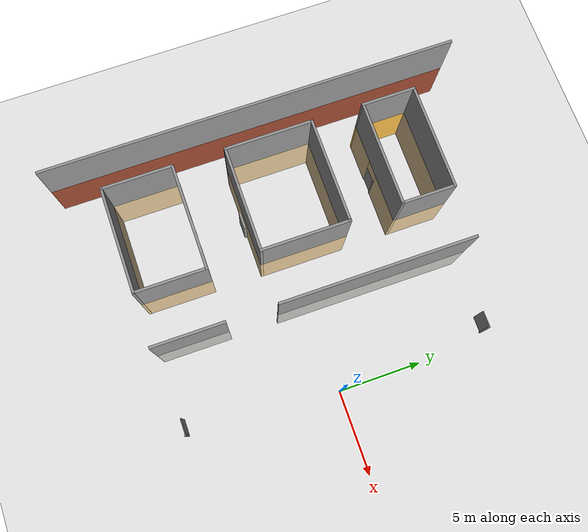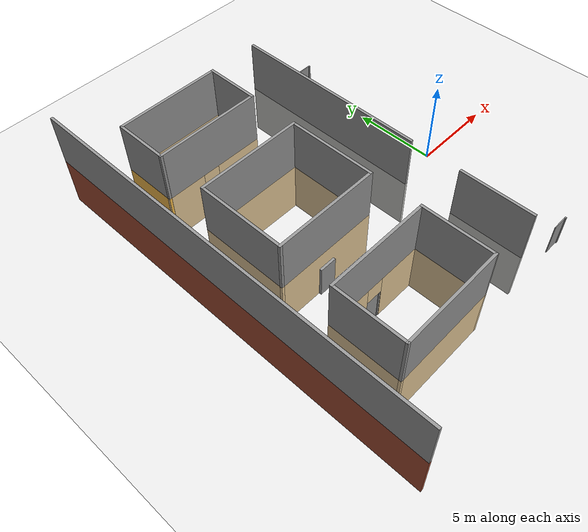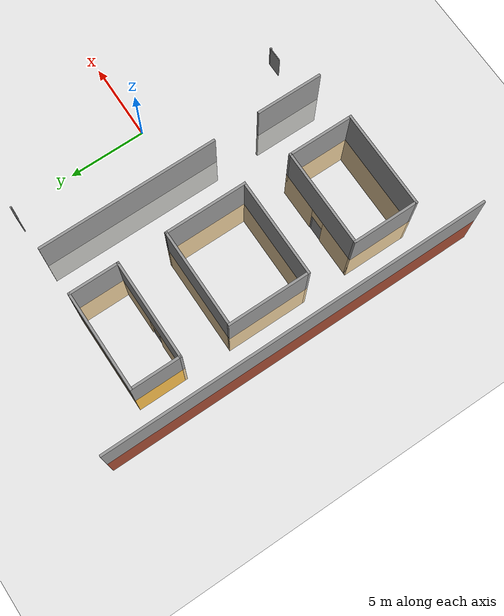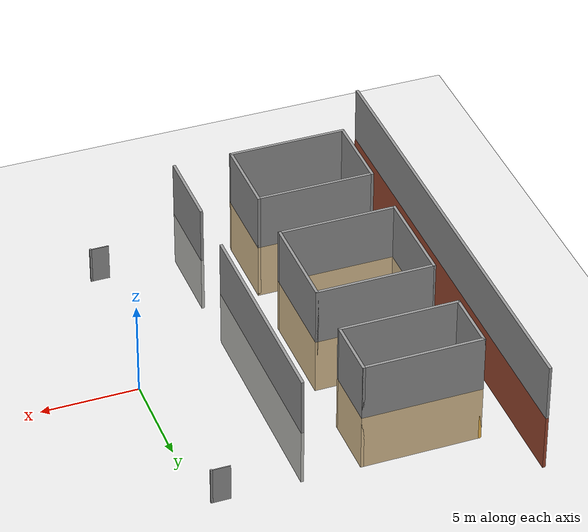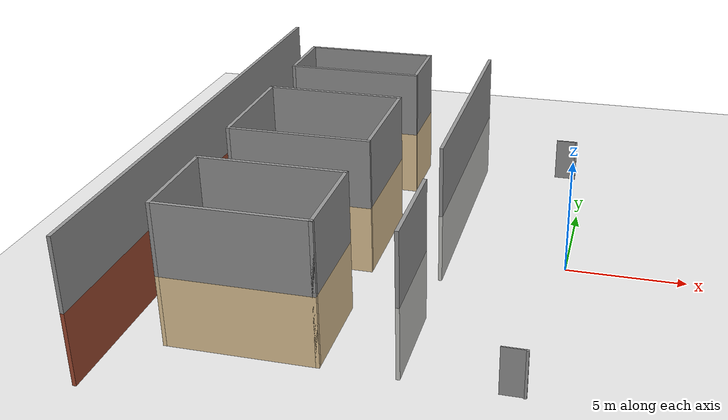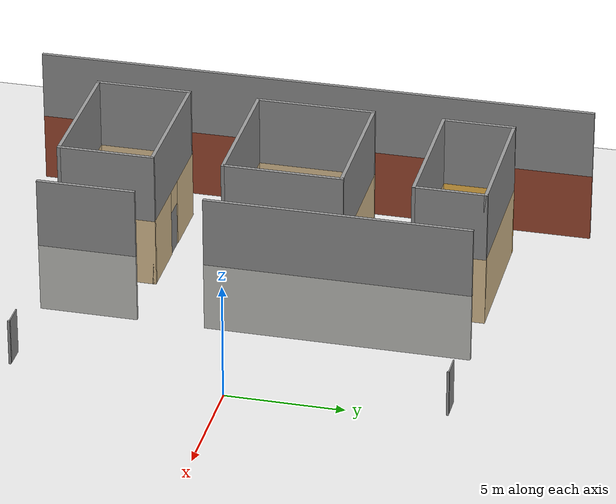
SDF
<sdf version="1.6">
 <world name="default">
  <model name="ground_plane">
   <static>1</static>
   <link name="link">
    <collision name="collision">
     <geometry><plane><normal>0 0 1</normal><size>100 100</size></plane></geometry>
     <surface><friction><ode><mu>100</mu><mu2>50</mu2></ode></friction></surface>
    </collision>
    <visual name="visual">
     <cast_shadows>0</cast_shadows>
     <geometry><plane><normal>0 0 1</normal><size>100 100</size></plane></geometry>
     <material>
      <script><uri>file://media/materials/scripts/gazebo.material</uri><name>Gazebo/White</name></script>
     </material>
    </visual>
   </link>
  </model>
  <model name="test_building">
   <link name="Door_3">
    <collision name="Door_3_Collision">
     <geometry><box><size>1 0.17 2</size></box></geometry>
     <pose>0 0 1 0 -0 0</pose>
    </collision>
    <visual name="Door_3_Visual">
     <pose>0 0 1 0 -0 0</pose>
     <geometry><box><size>1 0.17 2</size></box></geometry>
     <material>
      <script><uri>file://media/materials/scripts/gazebo.material</uri><name>Gazebo/Grey</name></script>
     </material>
    </visual>
    <pose>-11.0407 -2.12985 0 0 -0 0</pose>
   </link>
   <link name="Wall_10">
    <collision name="Wall_10_Collision">
     <geometry><box><size>6.15 0.15 3</size></box></geometry>
     <pose>0 0 1.5 0 -0 0</pose>
    </collision>
    <visual name="Wall_10_Visual">
     <pose>0 0 1.5 0 -0 0</pose>
     <geometry><box><size>6.15 0.15 3</size></box></geometry>
     <material>
      <script><uri>file://media/materials/scripts/gazebo.material</uri><name>Gazebo/Grey</name></script>
      <ambient>0.921569 0.807843 0.615686 1</ambient>
     </material>
     <meta><layer>0</layer></meta>
    </visual>
    <pose>-11 3 0 0 -0 0</pose>
   </link>
   <link name="Wall_11">
    <collision name="Wall_11_Collision">
     <geometry><box><size>5.15 0.15 3</size></box></geometry>
     <pose>0 0 1.5 0 -0 0</pose>
    </collision>
    <visual name="Wall_11_Visual">
     <pose>0 0 1.5 0 -0 0</pose>
     <geometry><box><size>5.15 0.15 3</size></box></geometry>
     <material>
      <script><uri>file://media/materials/scripts/gazebo.material</uri><name>Gazebo/Grey</name></script>
      <ambient>0.921569 0.807843 0.615686 1</ambient>
     </material>
     <meta><layer>0</layer></meta>
    </visual>
    <pose>-8 0.5 0 0 -0 -1.5708</pose>
   </link>
   <link name="Wall_12">
    <collision name="Wall_12_Collision">
     <geometry><box><size>6.15 0.15 3</size></box></geometry>
     <pose>0 0 1.5 0 -0 0</pose>
    </collision>
    <visual name="Wall_12_Visual">
     <pose>0 0 1.5 0 -0 0</pose>
     <geometry><box><size>6.15 0.15 3</size></box></geometry>
     <material>
      <script><uri>file://media/materials/scripts/gazebo.material</uri><name>Gazebo/Grey</name></script>
      <ambient>0.921569 0.807843 0.615686 1</ambient>
     </material>
     <meta><layer>0</layer></meta>
    </visual>
    <pose>-11 -2 0 0 -0 3.14159</pose>
   </link>
   <link name="Wall_13">
    <collision name="Wall_13_Collision">
     <geometry><box><size>5.15 0.15 3</size></box></geometry>
     <pose>0 0 1.5 0 -0 0</pose>
    </collision>
    <visual name="Wall_13_Visual">
     <pose>0 0 1.5 0 -0 0</pose>
     <geometry><box><size>5.15 0.15 3</size></box></geometry>
     <material>
      <script><uri>file://media/materials/scripts/gazebo.material</uri><name>Gazebo/Grey</name></script>
      <ambient>0.921569 0.807843 0.615686 1</ambient>
     </material>
     <meta><layer>0</layer></meta>
    </visual>
    <pose>-14 0.5 0 0 -0 1.5708</pose>
   </link>
   <link name="Wall_15">
    <pose>-11 -5 0 0 -0 0</pose>
    <visual name="Wall_15_Visual_0">
     <pose>-1.78775 0 1.5 0 -0 0</pose>
     <geometry><box><size>2.57449 0.15 3</size></box></geometry>
     <material>
      <script><uri>file://media/materials/scripts/gazebo.material</uri><name>Gazebo/Grey</name></script>
      <ambient>0.921569 0.807843 0.615686 1</ambient>
     </material>
     <meta><layer>0</layer></meta>
    </visual>
    <collision name="Wall_15_Collision_0">
     <geometry><box><size>2.57449 0.15 3</size></box></geometry>
     <pose>-1.78775 0 1.5 0 -0 0</pose>
    </collision>
    <visual name="Wall_15_Visual_1">
     <pose>1.78725 0 1.5 0 -0 0</pose>
     <geometry><box><size>2.57551 0.15 3</size></box></geometry>
     <material>
      <script><uri>file://media/materials/scripts/gazebo.material</uri><name>Gazebo/Grey</name></script>
      <ambient>0.921569 0.807843 0.615686 1</ambient>
     </material>
     <meta><layer>0</layer></meta>
    </visual>
    <collision name="Wall_15_Collision_1">
     <geometry><box><size>2.57551 0.15 3</size></box></geometry>
     <pose>1.78725 0 1.5 0 -0 0</pose>
    </collision>
    <visual name="Wall_15_Visual_2">
     <pose>-0.000507 0 2.5 0 -0 0</pose>
     <geometry><box><size>1 0.15 1</size></box></geometry>
     <material>
      <script><uri>file://media/materials/scripts/gazebo.material</uri><name>Gazebo/Grey</name></script>
      <ambient>0.921569 0.807843 0.615686 1</ambient>
     </material>
     <meta><layer>0</layer></meta>
    </visual>
    <collision name="Wall_15_Collision_2">
     <geometry><box><size>1 0.15 1</size></box></geometry>
     <pose>-0.000507 0 2.5 0 -0 0</pose>
    </collision>
   </link>
   <link name="Wall_16">
    <collision name="Wall_16_Collision">
     <geometry><box><size>4.15 0.15 3</size></box></geometry>
     <pose>0 0 1.5 0 -0 0</pose>
    </collision>
    <visual name="Wall_16_Visual">
     <pose>0 0 1.5 0 -0 0</pose>
     <geometry><box><size>4.15 0.15 3</size></box></geometry>
     <material>
      <script><uri>file://media/materials/scripts/gazebo.material</uri><name>Gazebo/Grey</name></script>
      <ambient>0.921569 0.807843 0.615686 1</ambient>
     </material>
     <meta><layer>0</layer></meta>
    </visual>
    <pose>-8 -7 0 0 -0 -1.5708</pose>
   </link>
   <link name="Wall_18">
    <collision name="Wall_18_Collision">
     <geometry><box><size>4.15 0.15 3</size></box></geometry>
     <pose>0 0 1.5 0 -0 0</pose>
    </collision>
    <visual name="Wall_18_Visual">
     <pose>0 0 1.5 0 -0 0</pose>
     <geometry><box><size>4.15 0.15 3</size></box></geometry>
     <material>
      <script><uri>file://media/materials/scripts/gazebo.material</uri><name>Gazebo/Grey</name></script>
      <ambient>0.921569 0.807843 0.615686 1</ambient>
     </material>
     <meta><layer>0</layer></meta>
    </visual>
    <pose>-14 -7 0 0 -0 1.5708</pose>
   </link>
   <link name="Wall_20">
    <collision name="Wall_20_Collision">
     <geometry><box><size>11.15 0.15 3</size></box></geometry>
     <pose>0 0 1.5 0 -0 0</pose>
    </collision>
    <visual name="Wall_20_Visual">
     <pose>0 0 1.5 0 -0 0</pose>
     <geometry><box><size>11.15 0.15 3</size></box></geometry>
     <material>
      <script><uri>file://media/materials/scripts/gazebo.material</uri><name>Gazebo/CeilingTiled</name></script>
      <ambient>0.435294 0.796078 0.67451 1</ambient>
     </material>
     <meta><layer>0</layer></meta>
    </visual>
    <pose>-5 3.5 0 0 -0 -1.5708</pose>
   </link>
   <link name="Wall_28">
    <collision name="Wall_28_Collision">
     <geometry><box><size>4.15 0.15 3</size></box></geometry>
     <pose>0 0 1.5 0 -0 0</pose>
    </collision>
    <visual name="Wall_28_Visual">
     <pose>0 0 1.5 0 -0 0</pose>
     <geometry><box><size>4.15 0.15 3</size></box></geometry>
     <material>
      <script><uri>file://media/materials/scripts/gazebo.material</uri><name>Gazebo/CeilingTiled</name></script>
      <ambient>0.435294 0.796078 0.67451 1</ambient>
     </material>
     <meta><layer>0</layer></meta>
    </visual>
    <pose>-5 -7 0 0 -0 1.5708</pose>
   </link>
   <link name="Wall_3">
    <collision name="Wall_3_Collision">
     <geometry><box><size>24.15 0.15 3</size></box></geometry>
     <pose>0 0 1.5 0 -0 0</pose>
    </collision>
    <visual name="Wall_3_Visual">
     <pose>0 0 1.5 0 -0 0</pose>
     <geometry><box><size>24.15 0.15 3</size></box></geometry>
     <material>
      <script><uri>file://media/materials/scripts/gazebo.material</uri><name>Gazebo/Bricks</name></script>
      <ambient>1 1 1 1</ambient>
     </material>
     <meta><layer>0</layer></meta>
    </visual>
    <pose>-16 0 0 0 -0 -1.5708</pose>
   </link>
   <link name="Wall_45">
    <collision name="Wall_45_Collision">
     <geometry><box><size>6.15 0.15 3</size></box></geometry>
     <pose>0 0 1.5 0 -0 0</pose>
    </collision>
    <visual name="Wall_45_Visual">
     <pose>0 0 1.5 0 -0 0</pose>
     <geometry><box><size>6.15 0.15 3</size></box></geometry>
     <material>
      <script><uri>file://media/materials/scripts/gazebo.material</uri><name>Gazebo/Grey</name></script>
      <ambient>0.921569 0.807843 0.615686 1</ambient>
     </material>
     <meta><layer>0</layer></meta>
    </visual>
    <pose>-11 -9 0 0 -0 0</pose>
   </link>
   <link name="Wall_5">
    <collision name="Wall_5_Collision">
     <geometry><box><size>6.15 0.15 3</size></box></geometry>
     <pose>0 0 1.5 0 -0 0</pose>
    </collision>
    <visual name="Wall_5_Visual">
     <pose>0 0 1.5 0 -0 0</pose>
     <geometry><box><size>6.15 0.15 3</size></box></geometry>
     <material>
      <script><uri>file://media/materials/scripts/gazebo.material</uri><name>Gazebo/Grey</name></script>
      <ambient>0.921569 0.807843 0.615686 1</ambient>
     </material>
     <meta><layer>0</layer></meta>
    </visual>
    <pose>-11 9 0 0 -0 0</pose>
   </link>
   <link name="Wall_50">
    <collision name="Wall_50_Collision">
     <geometry><box><size>24.15 0.15 3</size></box></geometry>
     <pose>0 0 1.5 0 -0 0</pose>
    </collision>
    <visual name="Wall_50_Visual">
     <pose>0 0 1.5 0 -0 0</pose>
     <geometry><box><size>24.15 0.15 3</size></box></geometry>
     <material>
      <script><uri>file://media/materials/scripts/gazebo.material</uri><name>Gazebo/Grey</name></script>
      <ambient>1 1 1 1</ambient>
     </material>
     <meta><layer>1</layer></meta>
    </visual>
    <pose>-16 0 3 0 -0 -1.5708</pose>
   </link>
   <link name="Wall_51">
    <collision name="Wall_51_Collision">
     <geometry><box><size>6.15 0.15 3</size></box></geometry>
     <pose>0 0 1.5 0 -0 0</pose>
    </collision>
    <visual name="Wall_51_Visual">
     <pose>0 0 1.5 0 -0 0</pose>
     <geometry><box><size>6.15 0.15 3</size></box></geometry>
     <material>
      <script><uri>file://media/materials/scripts/gazebo.material</uri><name>Gazebo/Grey</name></script>
      <ambient>1 1 1 1</ambient>
     </material>
     <meta><layer>1</layer></meta>
    </visual>
    <pose>-11 9 3 0 -0 0</pose>
   </link>
   <link name="Wall_52">
    <collision name="Wall_52_Collision">
     <geometry><box><size>3.15 0.15 3</size></box></geometry>
     <pose>0 0 1.5 0 -0 0</pose>
    </collision>
    <visual name="Wall_52_Visual">
     <pose>0 0 1.5 0 -0 0</pose>
     <geometry><box><size>3.15 0.15 3</size></box></geometry>
     <material>
      <script><uri>file://media/materials/scripts/gazebo.material</uri><name>Gazebo/Grey</name></script>
      <ambient>1 1 1 1</ambient>
     </material>
     <meta><layer>1</layer></meta>
    </visual>
    <pose>-8 7.5 3 0 -0 -1.5708</pose>
   </link>
   <link name="Wall_53">
    <collision name="Wall_53_Collision">
     <geometry><box><size>6.15 0.15 3</size></box></geometry>
     <pose>0 0 1.5 0 -0 0</pose>
    </collision>
    <visual name="Wall_53_Visual">
     <pose>0 0 1.5 0 -0 0</pose>
     <geometry><box><size>6.15 0.15 3</size></box></geometry>
     <material>
      <script><uri>file://media/materials/scripts/gazebo.material</uri><name>Gazebo/Grey</name></script>
      <ambient>1 1 1 1</ambient>
     </material>
     <meta><layer>1</layer></meta>
    </visual>
    <pose>-11 6 3 0 -0 3.14159</pose>
   </link>
   <link name="Wall_54">
    <collision name="Wall_54_Collision">
     <geometry><box><size>3.15 0.15 3</size></box></geometry>
     <pose>0 0 1.5 0 -0 0</pose>
    </collision>
    <visual name="Wall_54_Visual">
     <pose>0 0 1.5 0 -0 0</pose>
     <geometry><box><size>3.15 0.15 3</size></box></geometry>
     <material>
      <script><uri>file://media/materials/scripts/gazebo.material</uri><name>Gazebo/Grey</name></script>
      <ambient>1 1 1 1</ambient>
     </material>
     <meta><layer>1</layer></meta>
    </visual>
    <pose>-14 7.5 3 0 -0 1.5708</pose>
   </link>
   <link name="Wall_55">
    <collision name="Wall_55_Collision">
     <geometry><box><size>6.15 0.15 3</size></box></geometry>
     <pose>0 0 1.5 0 -0 0</pose>
    </collision>
    <visual name="Wall_55_Visual">
     <pose>0 0 1.5 0 -0 0</pose>
     <geometry><box><size>6.15 0.15 3</size></box></geometry>
     <material>
      <script><uri>file://media/materials/scripts/gazebo.material</uri><name>Gazebo/Grey</name></script>
      <ambient>1 1 1 1</ambient>
     </material>
     <meta><layer>1</layer></meta>
    </visual>
    <pose>-11 3 3 0 -0 0</pose>
   </link>
   <link name="Wall_56">
    <collision name="Wall_56_Collision">
     <geometry><box><size>5.15 0.15 3</size></box></geometry>
     <pose>0 0 1.5 0 -0 0</pose>
    </collision>
    <visual name="Wall_56_Visual">
     <pose>0 0 1.5 0 -0 0</pose>
     <geometry><box><size>5.15 0.15 3</size></box></geometry>
     <material>
      <script><uri>file://media/materials/scripts/gazebo.material</uri><name>Gazebo/Grey</name></script>
      <ambient>1 1 1 1</ambient>
     </material>
     <meta><layer>1</layer></meta>
    </visual>
    <pose>-8 0.5 3 0 -0 -1.5708</pose>
   </link>
   <link name="Wall_57">
    <collision name="Wall_57_Collision">
     <geometry><box><size>6.15 0.15 3</size></box></geometry>
     <pose>0 0 1.5 0 -0 0</pose>
    </collision>
    <visual name="Wall_57_Visual">
     <pose>0 0 1.5 0 -0 0</pose>
     <geometry><box><size>6.15 0.15 3</size></box></geometry>
     <material>
      <script><uri>file://media/materials/scripts/gazebo.material</uri><name>Gazebo/Grey</name></script>
      <ambient>1 1 1 1</ambient>
     </material>
     <meta><layer>1</layer></meta>
    </visual>
    <pose>-11 -2 3 0 -0 3.14159</pose>
   </link>
   <link name="Wall_58">
    <collision name="Wall_58_Collision">
     <geometry><box><size>5.15 0.15 3</size></box></geometry>
     <pose>0 0 1.5 0 -0 0</pose>
    </collision>
    <visual name="Wall_58_Visual">
     <pose>0 0 1.5 0 -0 0</pose>
     <geometry><box><size>5.15 0.15 3</size></box></geometry>
     <material>
      <script><uri>file://media/materials/scripts/gazebo.material</uri><name>Gazebo/Grey</name></script>
      <ambient>1 1 1 1</ambient>
     </material>
     <meta><layer>1</layer></meta>
    </visual>
    <pose>-14 0.5 3 0 -0 1.5708</pose>
   </link>
   <link name="Wall_59">
    <collision name="Wall_59_Collision">
     <geometry><box><size>6.15 0.15 3</size></box></geometry>
     <pose>0 0 1.5 0 -0 0</pose>
    </collision>
    <visual name="Wall_59_Visual">
     <pose>0 0 1.5 0 -0 0</pose>
     <geometry><box><size>6.15 0.15 3</size></box></geometry>
     <material>
      <script><uri>file://media/materials/scripts/gazebo.material</uri><name>Gazebo/Grey</name></script>
      <ambient>1 1 1 1</ambient>
     </material>
     <meta><layer>1</layer></meta>
    </visual>
    <pose>-11 -5 3 0 -0 0</pose>
   </link>
   <link name="Wall_6">
    <collision name="Wall_6_Collision">
     <geometry><box><size>3.15 0.15 3</size></box></geometry>
     <pose>0 0 1.5 0 -0 0</pose>
    </collision>
    <visual name="Wall_6_Visual">
     <pose>0 0 1.5 0 -0 0</pose>
     <geometry><box><size>3.15 0.15 3</size></box></geometry>
     <material>
      <script><uri>file://media/materials/scripts/gazebo.material</uri><name>Gazebo/Grey</name></script>
      <ambient>0.921569 0.807843 0.615686 1</ambient>
     </material>
     <meta><layer>0</layer></meta>
    </visual>
    <pose>-8 7.5 0 0 -0 -1.5708</pose>
   </link>
   <link name="Wall_60">
    <collision name="Wall_60_Collision">
     <geometry><box><size>4.15 0.15 3</size></box></geometry>
     <pose>0 0 1.5 0 -0 0</pose>
    </collision>
    <visual name="Wall_60_Visual">
     <pose>0 0 1.5 0 -0 0</pose>
     <geometry><box><size>4.15 0.15 3</size></box></geometry>
     <material>
      <script><uri>file://media/materials/scripts/gazebo.material</uri><name>Gazebo/Grey</name></script>
      <ambient>1 1 1 1</ambient>
     </material>
     <meta><layer>1</layer></meta>
    </visual>
    <pose>-8 -7 3 0 -0 -1.5708</pose>
   </link>
   <link name="Wall_61">
    <collision name="Wall_61_Collision">
     <geometry><box><size>4.15 0.15 3</size></box></geometry>
     <pose>0 0 1.5 0 -0 0</pose>
    </collision>
    <visual name="Wall_61_Visual">
     <pose>0 0 1.5 0 -0 0</pose>
     <geometry><box><size>4.15 0.15 3</size></box></geometry>
     <material>
      <script><uri>file://media/materials/scripts/gazebo.material</uri><name>Gazebo/Grey</name></script>
      <ambient>1 1 1 1</ambient>
     </material>
     <meta><layer>1</layer></meta>
    </visual>
    <pose>-14 -7 3 0 -0 1.5708</pose>
   </link>
   <link name="Wall_62">
    <collision name="Wall_62_Collision">
     <geometry><box><size>11.15 0.15 3</size></box></geometry>
     <pose>0 0 1.5 0 -0 0</pose>
    </collision>
    <visual name="Wall_62_Visual">
     <pose>0 0 1.5 0 -0 0</pose>
     <geometry><box><size>11.15 0.15 3</size></box></geometry>
     <material>
      <script><uri>file://media/materials/scripts/gazebo.material</uri><name>Gazebo/Grey</name></script>
      <ambient>1 1 1 1</ambient>
     </material>
     <meta><layer>1</layer></meta>
    </visual>
    <pose>-5 3.5 3 0 -0 -1.5708</pose>
   </link>
   <link name="Wall_69">
    <collision name="Wall_69_Collision">
     <geometry><box><size>4.15 0.15 3</size></box></geometry>
     <pose>0 0 1.5 0 -0 0</pose>
    </collision>
    <visual name="Wall_69_Visual">
     <pose>0 0 1.5 0 -0 0</pose>
     <geometry><box><size>4.15 0.15 3</size></box></geometry>
     <material>
      <script><uri>file://media/materials/scripts/gazebo.material</uri><name>Gazebo/Grey</name></script>
      <ambient>1 1 1 1</ambient>
     </material>
     <meta><layer>1</layer></meta>
    </visual>
    <pose>-5 -7 3 0 -0 1.5708</pose>
   </link>
   <link name="Wall_7">
    <pose>-11 6 0 0 -0 3.14159</pose>
    <visual name="Wall_7_Visual_0">
     <pose>-1.66657 0 1.5 0 -0 0</pose>
     <geometry><box><size>2.81687 0.15 3</size></box></geometry>
     <material>
      <script><uri>file://media/materials/scripts/gazebo.material</uri><name>Gazebo/Grey</name></script>
      <ambient>0.921569 0.807843 0.615686 1</ambient>
     </material>
     <meta><layer>0</layer></meta>
    </visual>
    <collision name="Wall_7_Collision_0">
     <geometry><box><size>2.81687 0.15 3</size></box></geometry>
     <pose>-1.66657 0 1.5 0 -0 0</pose>
    </collision>
    <visual name="Wall_7_Visual_1">
     <pose>1.90844 0 1.5 0 -0 0</pose>
     <geometry><box><size>2.33313 0.15 3</size></box></geometry>
     <material>
      <script><uri>file://media/materials/scripts/gazebo.material</uri><name>Gazebo/Grey</name></script>
      <ambient>0.921569 0.807843 0.615686 1</ambient>
     </material>
     <meta><layer>0</layer></meta>
    </visual>
    <collision name="Wall_7_Collision_1">
     <geometry><box><size>2.33313 0.15 3</size></box></geometry>
     <pose>1.90844 0 1.5 0 -0 0</pose>
    </collision>
    <visual name="Wall_7_Visual_2">
     <pose>0.241871 0 2.5 0 -0 0</pose>
     <geometry><box><size>1 0.15 1</size></box></geometry>
     <material>
      <script><uri>file://media/materials/scripts/gazebo.material</uri><name>Gazebo/Grey</name></script>
      <ambient>0.921569 0.807843 0.615686 1</ambient>
     </material>
     <meta><layer>0</layer></meta>
    </visual>
    <collision name="Wall_7_Collision_2">
     <geometry><box><size>1 0.15 1</size></box></geometry>
     <pose>0.241871 0 2.5 0 -0 0</pose>
    </collision>
   </link>
   <link name="Wall_8">
    <collision name="Wall_8_Collision">
     <geometry><box><size>3.15 0.15 3</size></box></geometry>
     <pose>0 0 1.5 0 -0 0</pose>
    </collision>
    <visual name="Wall_8_Visual">
     <pose>0 0 1.5 0 -0 0</pose>
     <geometry><box><size>3.15 0.15 3</size></box></geometry>
     <material>
      <script><uri>file://media/materials/scripts/gazebo.material</uri><name>Gazebo/Grey</name></script>
      <ambient>1 0.764706 0.305882 1</ambient>
     </material>
     <meta><layer>0</layer></meta>
    </visual>
    <pose>-14 7.5 0 0 -0 1.5708</pose>
   </link>
   <link name="Wall_82">
    <collision name="Wall_82_Collision">
     <geometry><box><size>6.15 0.15 3</size></box></geometry>
     <pose>0 0 1.5 0 -0 0</pose>
    </collision>
    <visual name="Wall_82_Visual">
     <pose>0 0 1.5 0 -0 0</pose>
     <geometry><box><size>6.15 0.15 3</size></box></geometry>
     <material>
      <script><uri>file://media/materials/scripts/gazebo.material</uri><name>Gazebo/Grey</name></script>
      <ambient>1 1 1 1</ambient>
     </material>
     <meta><layer>1</layer></meta>
    </visual>
    <pose>-11 -9 3 0 -0 0</pose>
   </link>
   <static>1</static>
  </model>
  <model name="door3_1">
   <model name="door2">
    <model name="door">
     <link name="link_0">
      <inertial>
       <mass>1</mass>
       <inertia>
        <ixx>0.166667</ixx>
        <ixy>0</ixy>
        <ixz>0</ixz>
        <iyy>0.166667</iyy>
        <iyz>0</iyz>
        <izz>0.166667</izz>
       </inertia>
      </inertial>
      <pose>0.77106 0.045416 0.5 0 -0 0</pose>
      <visual name="visual">
       <geometry><box><size>0.9 0.05 2</size></box></geometry>
       <material>
        <lighting>1</lighting>
        <script><uri>file://media/materials/scripts/gazebo.material</uri><name>Gazebo/Grey</name></script>
        <shader type="pixel"><normal_map>__default__</normal_map></shader>
        <ambient>0.3 0.3 0.3 1</ambient>
        <diffuse>0.7 0.7 0.7 1</diffuse>
        <specular>0.01 0.01 0.01 1</specular>
        <emissive>0 0 0 1</emissive>
       </material>
      </visual>
      <collision name="collision">
       <geometry><box><size>0.9 0.1 2</size></box></geometry>
       <surface>
        <friction>
         <ode><mu>1</mu><mu2>1</mu2><fdir1>0 0 0</fdir1><slip1>0</slip1><slip2>0</slip2></ode>
         <torsional>
          <coefficient>1</coefficient>
          <patch_radius>0</patch_radius>
          <surface_radius>0</surface_radius>
          <use_patch_radius>1</use_patch_radius>
          <ode><slip>0</slip></ode>
         </torsional>
        </friction>
        <bounce><restitution_coefficient>0</restitution_coefficient><threshold>1e+06</threshold></bounce>
        <contact>
         <collide_without_contact>0</collide_without_contact>
         <collide_without_contact_bitmask>1</collide_without_contact_bitmask>
         <collide_bitmask>1</collide_bitmask>
         <ode>
          <soft_cfm>0</soft_cfm>
          <soft_erp>0.2</soft_erp>
          <kp>1e+13</kp>
          <kd>1</kd>
          <max_vel>0.01</max_vel>
          <min_depth>0</min_depth>
         </ode>
         <bullet>
          <split_impulse>1</split_impulse>
          <split_impulse_penetration_threshold>-0.01</split_impulse_penetration_threshold>
          <soft_cfm>0</soft_cfm>
          <soft_erp>0.2</soft_erp>
          <kp>1e+13</kp>
          <kd>1</kd>
         </bullet>
        </contact>
       </surface>
      </collision>
     </link>
     <link name="link_1">
      <inertial>
       <mass>10</mass>
       <inertia>
        <ixx>3.34167</ixx>
        <ixy>0</ixy>
        <ixz>0</ixz>
        <iyy>3.34167</iyy>
        <iyz>0</iyz>
        <izz>0.0166667</izz>
       </inertia>
      </inertial>
      <pose>1.27106 0.020416 0.5 0 -0 0</pose>
      <visual name="visual">
       <geometry><box><size>0.1 0.1 2</size></box></geometry>
       <material>
        <lighting>1</lighting>
        <script><uri>file://media/materials/scripts/gazebo.material</uri><name>Gazebo/Grey</name></script>
        <shader type="pixel"><normal_map>__default__</normal_map></shader>
        <ambient>0.3 0.3 0.3 1</ambient>
        <diffuse>0.7 0.7 0.7 1</diffuse>
        <specular>0.01 0.01 0.01 1</specular>
        <emissive>0 0 0 1</emissive>
       </material>
      </visual>
      <collision name="collision">
       <geometry><box><size>0.1 0.1 2</size></box></geometry>
       <surface>
        <friction>
         <ode><mu>1</mu><mu2>1</mu2><fdir1>0 0 0</fdir1><slip1>0</slip1><slip2>0</slip2></ode>
         <torsional>
          <coefficient>1</coefficient>
          <patch_radius>0</patch_radius>
          <surface_radius>0</surface_radius>
          <use_patch_radius>1</use_patch_radius>
          <ode><slip>0</slip></ode>
         </torsional>
        </friction>
        <bounce><restitution_coefficient>0</restitution_coefficient><threshold>1e+06</threshold></bounce>
        <contact>
         <collide_without_contact>0</collide_without_contact>
         <collide_without_contact_bitmask>1</collide_without_contact_bitmask>
         <collide_bitmask>1</collide_bitmask>
         <ode>
          <soft_cfm>0</soft_cfm>
          <soft_erp>0.2</soft_erp>
          <kp>1e+13</kp>
          <kd>1</kd>
          <max_vel>0.01</max_vel>
          <min_depth>0</min_depth>
         </ode>
         <bullet>
          <split_impulse>1</split_impulse>
          <split_impulse_penetration_threshold>-0.01</split_impulse_penetration_threshold>
          <soft_cfm>0</soft_cfm>
          <soft_erp>0.2</soft_erp>
          <kp>1e+13</kp>
          <kd>1</kd>
         </bullet>
        </contact>
       </surface>
      </collision>
     </link>
     <joint name="link_1_JOINT_0" type="revolute">
      <parent>link_1</parent>
      <child>link_0</child>
      <axis>
       <xyz>0 0 1</xyz>
       <use_parent_model_frame>0</use_parent_model_frame>
       <limit>
        <lower>-1.79769e+308</lower>
        <upper>1.79769e+308</upper>
        <effort>-1</effort>
        <velocity>-1</velocity>
       </limit>
       <dynamics>
        <spring_reference>0</spring_reference>
        <spring_stiffness>0</spring_stiffness>
        <damping>0</damping>
       </dynamics>
      </axis>
      <physics>
       <ode><limit><cfm>0</cfm><erp>0.2</erp></limit><suspension><cfm>0</cfm><erp>0.2</erp></suspension></ode>
      </physics>
     </joint>
     <static>0</static>
     <pose>0 4e-06 0 0 -0 0</pose>
    </model>
    <joint name="link_0_JOINT_1" type="fixed">
     <parent>door::link_0</parent>
     <child>door::link_1</child>
     <physics>
      <ode><limit><cfm>0</cfm><erp>0.2</erp></limit><suspension><cfm>0</cfm><erp>0.2</erp></suspension></ode>
     </physics>
    </joint>
    <static>0</static>
    <pose>5e-06 -0 0.47855 0 -0 0</pose>
   </model>
   <joint name="link_1_JOINT_2" type="fixed">
    <parent>door2::door::link_1</parent>
    <child>door2::door::link_0</child>
    <physics>
     <ode><limit><cfm>0</cfm><erp>0.2</erp></limit><suspension><cfm>0</cfm><erp>0.2</erp></suspension></ode>
    </physics>
   </joint>
   <static>0</static>
   <pose>-11.8278 -5.02655 0 0 -0 0</pose>
  </model>
  <model name="door5">
   <model name="door">
    <link name="link_0">
     <inertial>
      <mass>1</mass>
      <inertia>
       <ixx>0.166667</ixx>
       <ixy>0</ixy>
       <ixz>0</ixz>
       <iyy>0.166667</iyy>
       <iyz>0</iyz>
       <izz>0.166667</izz>
      </inertia>
     </inertial>
     <pose>0.77106 0.045416 0.5 0 -0 0</pose>
     <visual name="visual">
      <geometry><box><size>0.9 0.05 2</size></box></geometry>
      <material>
       <lighting>1</lighting>
       <script><uri>file://media/materials/scripts/gazebo.material</uri><name>Gazebo/Grey</name></script>
       <shader type="pixel"><normal_map>__default__</normal_map></shader>
       <ambient>0.3 0.3 0.3 1</ambient>
       <diffuse>0.7 0.7 0.7 1</diffuse>
       <specular>0.01 0.01 0.01 1</specular>
       <emissive>0 0 0 1</emissive>
      </material>
     </visual>
     <collision name="collision">
      <geometry><box><size>0.9 0.1 2</size></box></geometry>
      <surface>
       <friction>
        <ode><mu>1</mu><mu2>1</mu2><fdir1>0 0 0</fdir1><slip1>0</slip1><slip2>0</slip2></ode>
        <torsional>
         <coefficient>1</coefficient>
         <patch_radius>0</patch_radius>
         <surface_radius>0</surface_radius>
         <use_patch_radius>1</use_patch_radius>
         <ode><slip>0</slip></ode>
        </torsional>
       </friction>
       <bounce><restitution_coefficient>0</restitution_coefficient><threshold>1e+06</threshold></bounce>
       <contact>
        <collide_without_contact>0</collide_without_contact>
        <collide_without_contact_bitmask>1</collide_without_contact_bitmask>
        <collide_bitmask>1</collide_bitmask>
        <ode>
         <soft_cfm>0</soft_cfm>
         <soft_erp>0.2</soft_erp>
         <kp>1e+13</kp>
         <kd>1</kd>
         <max_vel>0.01</max_vel>
         <min_depth>0</min_depth>
        </ode>
        <bullet>
         <split_impulse>1</split_impulse>
         <split_impulse_penetration_threshold>-0.01</split_impulse_penetration_threshold>
         <soft_cfm>0</soft_cfm>
         <soft_erp>0.2</soft_erp>
         <kp>1e+13</kp>
         <kd>1</kd>
        </bullet>
       </contact>
      </surface>
     </collision>
    </link>
    <link name="link_1">
     <inertial>
      <mass>10</mass>
      <inertia>
       <ixx>3.34167</ixx>
       <ixy>0</ixy>
       <ixz>0</ixz>
       <iyy>3.34167</iyy>
       <iyz>0</iyz>
       <izz>0.0166667</izz>
      </inertia>
     </inertial>
     <pose>1.27106 0.020416 0.5 0 -0 0</pose>
     <visual name="visual">
      <geometry><box><size>0.1 0.1 2</size></box></geometry>
      <material>
       <lighting>1</lighting>
       <script><uri>file://media/materials/scripts/gazebo.material</uri><name>Gazebo/Grey</name></script>
       <shader type="pixel"><normal_map>__default__</normal_map></shader>
       <ambient>0.3 0.3 0.3 1</ambient>
       <diffuse>0.7 0.7 0.7 1</diffuse>
       <specular>0.01 0.01 0.01 1</specular>
       <emissive>0 0 0 1</emissive>
      </material>
     </visual>
     <collision name="collision">
      <geometry><box><size>0.1 0.1 2</size></box></geometry>
      <surface>
       <friction>
        <ode><mu>1</mu><mu2>1</mu2><fdir1>0 0 0</fdir1><slip1>0</slip1><slip2>0</slip2></ode>
        <torsional>
         <coefficient>1</coefficient>
         <patch_radius>0</patch_radius>
         <surface_radius>0</surface_radius>
         <use_patch_radius>1</use_patch_radius>
         <ode><slip>0</slip></ode>
        </torsional>
       </friction>
       <bounce><restitution_coefficient>0</restitution_coefficient><threshold>1e+06</threshold></bounce>
       <contact>
        <collide_without_contact>0</collide_without_contact>
        <collide_without_contact_bitmask>1</collide_without_contact_bitmask>
        <collide_bitmask>1</collide_bitmask>
        <ode>
         <soft_cfm>0</soft_cfm>
         <soft_erp>0.2</soft_erp>
         <kp>1e+13</kp>
         <kd>1</kd>
         <max_vel>0.01</max_vel>
         <min_depth>0</min_depth>
        </ode>
        <bullet>
         <split_impulse>1</split_impulse>
         <split_impulse_penetration_threshold>-0.01</split_impulse_penetration_threshold>
         <soft_cfm>0</soft_cfm>
         <soft_erp>0.2</soft_erp>
         <kp>1e+13</kp>
         <kd>1</kd>
        </bullet>
       </contact>
      </surface>
     </collision>
    </link>
    <joint name="link_1_JOINT_0" type="revolute">
     <parent>link_1</parent>
     <child>link_0</child>
     <axis>
      <xyz>0 0 1</xyz>
      <use_parent_model_frame>0</use_parent_model_frame>
      <limit>
       <lower>-1.79769e+308</lower>
       <upper>1.79769e+308</upper>
       <effort>-1</effort>
       <velocity>-1</velocity>
      </limit>
      <dynamics>
       <spring_reference>0</spring_reference>
       <spring_stiffness>0</spring_stiffness>
       <damping>0</damping>
      </dynamics>
     </axis>
     <physics>
      <ode><limit><cfm>0</cfm><erp>0.2</erp></limit><suspension><cfm>0</cfm><erp>0.2</erp></suspension></ode>
     </physics>
    </joint>
    <static>0</static>
    <pose>-4e-06 -2e-06 0.562279 0 -0 0</pose>
   </model>
   <joint name="link_1_JOINT_3" type="revolute">
    <parent>door::link_1</parent>
    <child>door::link_0</child>
    <pose>0.45 0 0 0 -0 0</pose>
    <axis>
     <xyz>0 0 1</xyz>
     <use_parent_model_frame>0</use_parent_model_frame>
     <limit>
      <lower>-1.79769e+308</lower>
      <upper>1.79769e+308</upper>
      <effort>-1</effort>
      <velocity>-1</velocity>
     </limit>
     <dynamics>
      <spring_reference>0</spring_reference>
      <spring_stiffness>0</spring_stiffness>
      <damping>0</damping>
     </dynamics>
    </axis>
    <physics>
     <ode><limit><cfm>0</cfm><erp>0.2</erp></limit><suspension><cfm>0</cfm><erp>0.2</erp></suspension></ode>
    </physics>
   </joint>
   <static>0</static>
   <pose>-1.80025 9.01058 0 0 -0 0</pose>
  </model>
  <model name="door3_4">
   <model name="door2">
    <model name="door">
     <link name="link_0">
      <inertial>
       <mass>1</mass>
       <inertia>
        <ixx>0.166667</ixx>
        <ixy>0</ixy>
        <ixz>0</ixz>
        <iyy>0.166667</iyy>
        <iyz>0</iyz>
        <izz>0.166667</izz>
       </inertia>
      </inertial>
      <pose>0.77106 0.045416 0.5 0 -0 0</pose>
      <visual name="visual">
       <geometry><box><size>0.9 0.05 2</size></box></geometry>
       <material>
        <lighting>1</lighting>
        <script><uri>file://media/materials/scripts/gazebo.material</uri><name>Gazebo/Grey</name></script>
        <shader type="pixel"><normal_map>__default__</normal_map></shader>
        <ambient>0.3 0.3 0.3 1</ambient>
        <diffuse>0.7 0.7 0.7 1</diffuse>
        <specular>0.01 0.01 0.01 1</specular>
        <emissive>0 0 0 1</emissive>
       </material>
      </visual>
      <collision name="collision">
       <geometry><box><size>0.9 0.1 2</size></box></geometry>
       <surface>
        <friction>
         <ode><mu>1</mu><mu2>1</mu2><fdir1>0 0 0</fdir1><slip1>0</slip1><slip2>0</slip2></ode>
         <torsional>
          <coefficient>1</coefficient>
          <patch_radius>0</patch_radius>
          <surface_radius>0</surface_radius>
          <use_patch_radius>1</use_patch_radius>
          <ode><slip>0</slip></ode>
         </torsional>
        </friction>
        <bounce><restitution_coefficient>0</restitution_coefficient><threshold>1e+06</threshold></bounce>
        <contact>
         <collide_without_contact>0</collide_without_contact>
         <collide_without_contact_bitmask>1</collide_without_contact_bitmask>
         <collide_bitmask>1</collide_bitmask>
         <ode>
          <soft_cfm>0</soft_cfm>
          <soft_erp>0.2</soft_erp>
          <kp>1e+13</kp>
          <kd>1</kd>
          <max_vel>0.01</max_vel>
          <min_depth>0</min_depth>
         </ode>
         <bullet>
          <split_impulse>1</split_impulse>
          <split_impulse_penetration_threshold>-0.01</split_impulse_penetration_threshold>
          <soft_cfm>0</soft_cfm>
          <soft_erp>0.2</soft_erp>
          <kp>1e+13</kp>
          <kd>1</kd>
         </bullet>
        </contact>
       </surface>
      </collision>
     </link>
     <link name="link_1">
      <inertial>
       <mass>10</mass>
       <inertia>
        <ixx>3.34167</ixx>
        <ixy>0</ixy>
        <ixz>0</ixz>
        <iyy>3.34167</iyy>
        <iyz>0</iyz>
        <izz>0.0166667</izz>
       </inertia>
      </inertial>
      <pose>1.27106 0.020416 0.5 0 -0 0</pose>
      <visual name="visual">
       <geometry><box><size>0.1 0.1 2</size></box></geometry>
       <material>
        <lighting>1</lighting>
        <script><uri>file://media/materials/scripts/gazebo.material</uri><name>Gazebo/Grey</name></script>
        <shader type="pixel"><normal_map>__default__</normal_map></shader>
        <ambient>0.3 0.3 0.3 1</ambient>
        <diffuse>0.7 0.7 0.7 1</diffuse>
        <specular>0.01 0.01 0.01 1</specular>
        <emissive>0 0 0 1</emissive>
       </material>
      </visual>
      <collision name="collision">
       <geometry><box><size>0.1 0.1 2</size></box></geometry>
       <surface>
        <friction>
         <ode><mu>1</mu><mu2>1</mu2><fdir1>0 0 0</fdir1><slip1>0</slip1><slip2>0</slip2></ode>
         <torsional>
          <coefficient>1</coefficient>
          <patch_radius>0</patch_radius>
          <surface_radius>0</surface_radius>
          <use_patch_radius>1</use_patch_radius>
          <ode><slip>0</slip></ode>
         </torsional>
        </friction>
        <bounce><restitution_coefficient>0</restitution_coefficient><threshold>1e+06</threshold></bounce>
        <contact>
         <collide_without_contact>0</collide_without_contact>
         <collide_without_contact_bitmask>1</collide_without_contact_bitmask>
         <collide_bitmask>1</collide_bitmask>
         <ode>
          <soft_cfm>0</soft_cfm>
          <soft_erp>0.2</soft_erp>
          <kp>1e+13</kp>
          <kd>1</kd>
          <max_vel>0.01</max_vel>
          <min_depth>0</min_depth>
         </ode>
         <bullet>
          <split_impulse>1</split_impulse>
          <split_impulse_penetration_threshold>-0.01</split_impulse_penetration_threshold>
          <soft_cfm>0</soft_cfm>
          <soft_erp>0.2</soft_erp>
          <kp>1e+13</kp>
          <kd>1</kd>
         </bullet>
        </contact>
       </surface>
      </collision>
     </link>
     <joint name="link_1_JOINT_0" type="revolute">
      <parent>link_1</parent>
      <child>link_0</child>
      <axis>
       <xyz>0 0 1</xyz>
       <use_parent_model_frame>0</use_parent_model_frame>
       <limit>
        <lower>-1.79769e+308</lower>
        <upper>1.79769e+308</upper>
        <effort>-1</effort>
        <velocity>-1</velocity>
       </limit>
       <dynamics>
        <spring_reference>0</spring_reference>
        <spring_stiffness>0</spring_stiffness>
        <damping>0</damping>
       </dynamics>
      </axis>
      <physics>
       <ode><limit><cfm>0</cfm><erp>0.2</erp></limit><suspension><cfm>0</cfm><erp>0.2</erp></suspension></ode>
      </physics>
     </joint>
     <static>0</static>
     <pose>0 4e-06 0 0 -0 0</pose>
    </model>
    <joint name="link_0_JOINT_1" type="fixed">
     <parent>door::link_0</parent>
     <child>door::link_1</child>
     <physics>
      <ode><limit><cfm>0</cfm><erp>0.2</erp></limit><suspension><cfm>0</cfm><erp>0.2</erp></suspension></ode>
     </physics>
    </joint>
    <static>0</static>
    <pose>5e-06 -0 0.47855 0 -0 0</pose>
   </model>
   <joint name="link_1_JOINT_2" type="fixed">
    <parent>door2::door::link_1</parent>
    <child>door2::door::link_0</child>
    <physics>
     <ode><limit><cfm>0</cfm><erp>0.2</erp></limit><suspension><cfm>0</cfm><erp>0.2</erp></suspension></ode>
    </physics>
   </joint>
   <static>0</static>
   <pose>-12.0708 5.95174 0 0 -0 0</pose>
  </model>
  <model name="door3_5">
   <model name="door2">
    <model name="door">
     <link name="link_0">
      <inertial>
       <mass>1</mass>
       <inertia>
        <ixx>0.166667</ixx>
        <ixy>0</ixy>
        <ixz>0</ixz>
        <iyy>0.166667</iyy>
        <iyz>0</iyz>
        <izz>0.166667</izz>
       </inertia>
      </inertial>
      <pose>0.77106 0.045416 0.5 0 -0 0</pose>
      <visual name="visual">
       <geometry><box><size>0.9 0.05 2</size></box></geometry>
       <material>
        <lighting>1</lighting>
        <script><uri>file://media/materials/scripts/gazebo.material</uri><name>Gazebo/Grey</name></script>
        <shader type="pixel"><normal_map>__default__</normal_map></shader>
        <ambient>0.3 0.3 0.3 1</ambient>
        <diffuse>0.7 0.7 0.7 1</diffuse>
        <specular>0.01 0.01 0.01 1</specular>
        <emissive>0 0 0 1</emissive>
       </material>
      </visual>
      <collision name="collision">
       <geometry><box><size>0.9 0.1 2</size></box></geometry>
       <surface>
        <friction>
         <ode><mu>1</mu><mu2>1</mu2><fdir1>0 0 0</fdir1><slip1>0</slip1><slip2>0</slip2></ode>
         <torsional>
          <coefficient>1</coefficient>
          <patch_radius>0</patch_radius>
          <surface_radius>0</surface_radius>
          <use_patch_radius>1</use_patch_radius>
          <ode><slip>0</slip></ode>
         </torsional>
        </friction>
        <bounce><restitution_coefficient>0</restitution_coefficient><threshold>1e+06</threshold></bounce>
        <contact>
         <collide_without_contact>0</collide_without_contact>
         <collide_without_contact_bitmask>1</collide_without_contact_bitmask>
         <collide_bitmask>1</collide_bitmask>
         <ode>
          <soft_cfm>0</soft_cfm>
          <soft_erp>0.2</soft_erp>
          <kp>1e+13</kp>
          <kd>1</kd>
          <max_vel>0.01</max_vel>
          <min_depth>0</min_depth>
         </ode>
         <bullet>
          <split_impulse>1</split_impulse>
          <split_impulse_penetration_threshold>-0.01</split_impulse_penetration_threshold>
          <soft_cfm>0</soft_cfm>
          <soft_erp>0.2</soft_erp>
          <kp>1e+13</kp>
          <kd>1</kd>
         </bullet>
        </contact>
       </surface>
      </collision>
     </link>
     <link name="link_1">
      <inertial>
       <mass>10</mass>
       <inertia>
        <ixx>3.34167</ixx>
        <ixy>0</ixy>
        <ixz>0</ixz>
        <iyy>3.34167</iyy>
        <iyz>0</iyz>
        <izz>0.0166667</izz>
       </inertia>
      </inertial>
      <pose>1.27106 0.020416 0.5 0 -0 0</pose>
      <visual name="visual">
       <geometry><box><size>0.1 0.1 2</size></box></geometry>
       <material>
        <lighting>1</lighting>
        <script><uri>file://media/materials/scripts/gazebo.material</uri><name>Gazebo/Grey</name></script>
        <shader type="pixel"><normal_map>__default__</normal_map></shader>
        <ambient>0.3 0.3 0.3 1</ambient>
        <diffuse>0.7 0.7 0.7 1</diffuse>
        <specular>0.01 0.01 0.01 1</specular>
        <emissive>0 0 0 1</emissive>
       </material>
      </visual>
      <collision name="collision">
       <geometry><box><size>0.1 0.1 2</size></box></geometry>
       <surface>
        <friction>
         <ode><mu>1</mu><mu2>1</mu2><fdir1>0 0 0</fdir1><slip1>0</slip1><slip2>0</slip2></ode>
         <torsional>
          <coefficient>1</coefficient>
          <patch_radius>0</patch_radius>
          <surface_radius>0</surface_radius>
          <use_patch_radius>1</use_patch_radius>
          <ode><slip>0</slip></ode>
         </torsional>
        </friction>
        <bounce><restitution_coefficient>0</restitution_coefficient><threshold>1e+06</threshold></bounce>
        <contact>
         <collide_without_contact>0</collide_without_contact>
         <collide_without_contact_bitmask>1</collide_without_contact_bitmask>
         <collide_bitmask>1</collide_bitmask>
         <ode>
          <soft_cfm>0</soft_cfm>
          <soft_erp>0.2</soft_erp>
          <kp>1e+13</kp>
          <kd>1</kd>
          <max_vel>0.01</max_vel>
          <min_depth>0</min_depth>
         </ode>
         <bullet>
          <split_impulse>1</split_impulse>
          <split_impulse_penetration_threshold>-0.01</split_impulse_penetration_threshold>
          <soft_cfm>0</soft_cfm>
          <soft_erp>0.2</soft_erp>
          <kp>1e+13</kp>
          <kd>1</kd>
         </bullet>
        </contact>
       </surface>
      </collision>
     </link>
     <joint name="link_1_JOINT_0" type="revolute">
      <parent>link_1</parent>
      <child>link_0</child>
      <axis>
       <xyz>0 0 1</xyz>
       <use_parent_model_frame>0</use_parent_model_frame>
       <limit>
        <lower>-1.79769e+308</lower>
        <upper>1.79769e+308</upper>
        <effort>-1</effort>
        <velocity>-1</velocity>
       </limit>
       <dynamics>
        <spring_reference>0</spring_reference>
        <spring_stiffness>0</spring_stiffness>
        <damping>0</damping>
       </dynamics>
      </axis>
      <physics>
       <ode><limit><cfm>0</cfm><erp>0.2</erp></limit><suspension><cfm>0</cfm><erp>0.2</erp></suspension></ode>
      </physics>
     </joint>
     <static>0</static>
     <pose>0 4e-06 0 0 -0 0</pose>
    </model>
    <joint name="link_0_JOINT_1" type="fixed">
     <parent>door::link_0</parent>
     <child>door::link_1</child>
     <physics>
      <ode><limit><cfm>0</cfm><erp>0.2</erp></limit><suspension><cfm>0</cfm><erp>0.2</erp></suspension></ode>
     </physics>
    </joint>
    <static>0</static>
    <pose>5e-06 -0 0.47855 0 -0 0</pose>
   </model>
   <joint name="link_1_JOINT_2" type="fixed">
    <parent>door2::door::link_1</parent>
    <child>door2::door::link_0</child>
    <physics>
     <ode><limit><cfm>0</cfm><erp>0.2</erp></limit><suspension><cfm>0</cfm><erp>0.2</erp></suspension></ode>
    </physics>
   </joint>
   <static>0</static>
   <pose>-1.71968 -9.04363 0 0 -0 0</pose>
  </model>
 </world>
</sdf>
